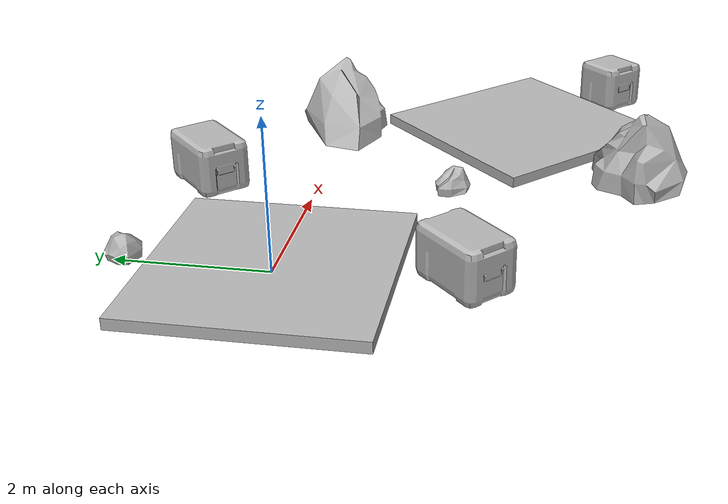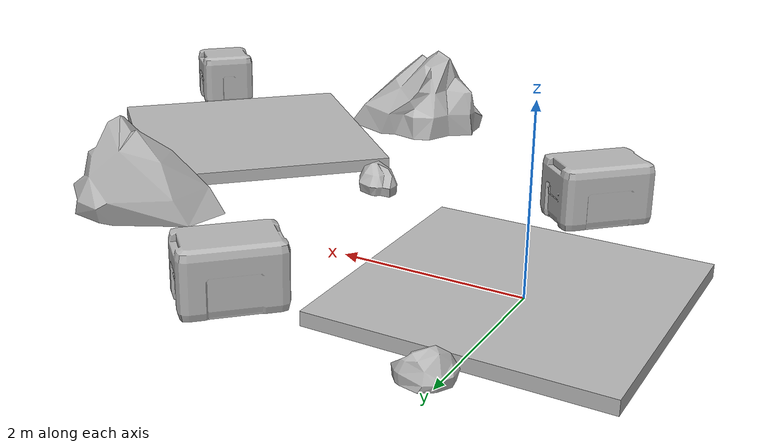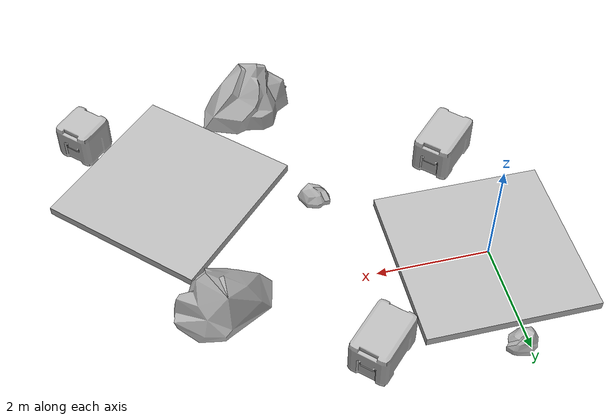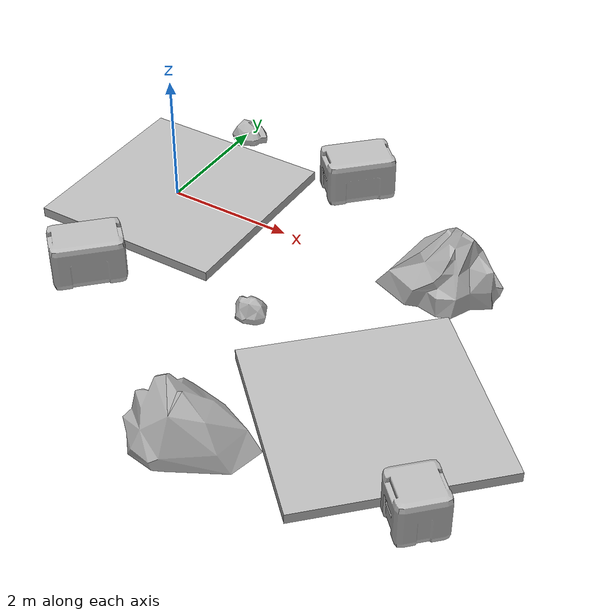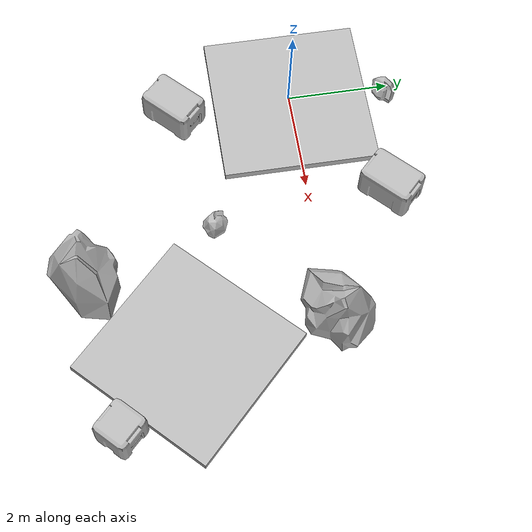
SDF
<sdf version="1.6">
 <world name="SRC_finals">
  <physics type="ode">
   <real_time_update_rate>1000.0</real_time_update_rate>
   <max_step_size>0.001</max_step_size>
   <real_time_factor>1</real_time_factor>
   <ode>
    <solver>
     <type>quick</type>
     <iters>150</iters>
     <precon_iters>0</precon_iters>
     <sor>1.400000</sor>
     <use_dynamic_moi_rescaling>1</use_dynamic_moi_rescaling>
    </solver>
    <constraints>
     <cfm>0.000000</cfm>
     <erp>0.800000</erp>
     <contact_max_correcting_vel>2000.000000</contact_max_correcting_vel>
     <contact_surface_layer>0.01000</contact_surface_layer>
    </constraints>
   </ode>
  </physics>
  <scene>
   <background>0.968627451 0.690196078 0.384313725 1.0</background>
   <grid>0</grid>
   <origin_visual>0</origin_visual>
  </scene>
  <light type="directional" name="sun">
   <pose>0 0 1000 -0.11143662174684987 -0.8707398172430749 0</pose>
   <diffuse>0.8 0.8 0.8 1</diffuse>
   <specular>0.2 0.2 0.2 1</specular>
   <attenuation>
    <range>1000</range>
    <constant>0.9</constant>
    <linear>0.01</linear>
    <quadratic>0.001</quadratic>
   </attenuation>
   <direction>-0.5 0.1 -0.9</direction>
  </light>
  <include>
   <name>walkway_1</name>
   <pose>0.09
      0
      -0.052151
      0
      0
      3.141592653589793</pose>
   <uri>model://walkway_finish_opposite</uri>
  </include>
  <include>
   <name>bling_1</name>
   <pose>0.08999999999999972
      -2.324
      0
      0
      0
      -2.3561944901923453</pose>
   <uri>model://mars_crate_long</uri>
  </include>
  <include>
   <name>bling_2</name>
   <pose>0.09000000000000027
      1.924
      0
      0
      0
      -2.4492935982947064e-16</pose>
   <uri>model://mars_rock_1</uri>
  </include>
  <plugin name="boxT1Start" filename="libBoxContainsPlugin.so">
   <entity>valkyrie</entity>
   <namespace>task1/start</namespace>
   <pose>2.114
        -2.784846821261081e-16
        2.5
        0
        0
        -1.5707963267948968</pose>
   <size>1.524 1 5.0</size>
  </plugin>
  <plugin name="boxT1CP1" filename="libBoxContainsPlugin.so">
   <entity>valkyrie</entity>
   <namespace>task1/checkpoint1</namespace>
   <pose>2.687517287525381
        0.3267572875253808
        2.5
        0
        0
        0.7853981633974481</pose>
   <size>1 1 5.0</size>
  </plugin>
  <include>
   <name>bling_3</name>
   <pose>2.3760000000000003
      1.5619999999999998
      0
      0
      0
      0.785398163397448</pose>
   <uri>model://mars_crate_long</uri>
  </include>
  <include>
   <name>bling_4</name>
   <pose>2.6318912875253813
      -1.8999435390029178
      0
      0
      0
      2.356194490192345</pose>
   <uri>model://mars_rock_1</uri>
  </include>
  <include>
   <name>bling_5</name>
   <pose>4.7701821938335005
      0.23834736730520178
      0
      0
      0
      -0.7853981633974484</pose>
   <uri>model://mars_rock_3</uri>
  </include>
  <include>
   <name>walkway_4</name>
   <pose>5.069995469056597
      -2.6947315610565976
      -0.052151
      0
      0
      0.7853981633974481</pose>
   <uri>model://walkway_finish_adjacent</uri>
  </include>
  <plugin name="boxT1CP4" filename="libBoxContainsPlugin.so">
   <entity>valkyrie</entity>
   <namespace>task1/checkpoint4</namespace>
   <pose>5.069995469056597
        -2.6947315610565976
        2.5
        0
        0
        0.7853981633974481</pose>
   <size>3.048 3.048 5.0</size>
  </plugin>
  <include>
   <name>bling_6</name>
   <pose>6.430468916059514
      -4.055205008059516
      0
      0
      0
      -2.3561944901923453</pose>
   <uri>model://mars_crate</uri>
  </include>
  <include>
   <name>bling_7</name>
   <pose>3.2145472752230955
      -4.550179754890098
      0
      0
      0
      2.356194490192345</pose>
   <uri>model://mars_rock_3</uri>
  </include>
  <plugin name="finals" filename="libFinalsPlugin.so">
   <task1>
    <timeout>1800</timeout>
    <checkpoint1>
     <skip_robot_pose>2.687517287525381
              0.3267572875253808
              1.257
              0
              0
              0.7853981633974481</skip_robot_pose>
    </checkpoint1>
    <checkpoint2>
     <skip_robot_pose>2.687517287525381
              0.3267572875253808
              1.257
              0
              0
              0.7853981633974481</skip_robot_pose>
    </checkpoint2>
    <checkpoint4>
     <skip_robot_pose>5.069995469056597
              -2.6947315610565976
              1.257
              0
              0
              0.7853981633974481</skip_robot_pose>
    </checkpoint4>
   </task1>
  </plugin>
 </world>
</sdf>

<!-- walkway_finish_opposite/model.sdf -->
<sdf version="1.5">
  <model name="walkway_finish_opposite">
    <static>true</static>
    <link name="link">
      <collision name="collision">
        <pose>0 0 0.076075 0 0 0</pose>
        <geometry>
          <box>
            <size>3.048 3.048 0.15215</size>
          </box>
        </geometry>
      </collision>

      <visual name="visual">
        <geometry>
          <mesh>
            <scale>0.001 0.001 0.001</scale>
            <uri>model://walkway_finish_opposite/meshes/walkway_finish_opposite.obj</uri>
          </mesh>
        </geometry>
      </visual>
    </link>
  </model>
</sdf>

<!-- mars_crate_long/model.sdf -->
<sdf version="1.5">
  <model name="mars_crate_long">
    <static>true</static>
    <link name="link">
      <collision name="collision">
        <pose>0 0 0.36 0 0 0</pose>
        <geometry>
          <box>
            <size>1.08 0.72 0.72</size>
          </box>
        </geometry>
      </collision>
      <visual name="visual">
        <geometry>
          <mesh>
            <uri>model://mars_crate_long/meshes/crate_long.obj</uri>
            <scale>0.03 0.03 0.03</scale>
          </mesh>
        </geometry>
      </visual>
    </link>
  </model>
</sdf>

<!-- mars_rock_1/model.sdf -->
<sdf version="1.5">
  <model name="mars_rock_1">
    <static>true</static>
    <link name="link">
      <collision name="collision">
        <geometry>
          <mesh>
            <uri>model://mars_rock_1/meshes/mars_rock_1.obj</uri>
            <scale>0.03 0.03 0.03</scale>
          </mesh>
        </geometry>
      </collision>
      <visual name="visual">
        <geometry>
          <mesh>
            <uri>model://mars_rock_1/meshes/mars_rock_1.obj</uri>
            <scale>0.03 0.03 0.03</scale>
          </mesh>
        </geometry>
      </visual>
    </link>
  </model>
</sdf>

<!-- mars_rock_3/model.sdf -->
<sdf version="1.5">
  <model name="mars_rock_3">
    <static>true</static>
    <link name="link">
      <collision name="collision">
        <geometry>
          <mesh>
            <uri>model://mars_rock_3/meshes/mars_rock_3.obj</uri>
            <scale>0.03 0.03 0.03</scale>
          </mesh>
        </geometry>
      </collision>
      <visual name="visual">
        <geometry>
          <mesh>
            <uri>model://mars_rock_3/meshes/mars_rock_3.obj</uri>
            <scale>0.03 0.03 0.03</scale>
          </mesh>
        </geometry>
      </visual>
    </link>
  </model>
</sdf>

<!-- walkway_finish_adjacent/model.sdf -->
<sdf version="1.5">
  <model name="walkway_finish_adjacent">
    <static>true</static>
    <link name="link">
      <collision name="collision">
        <pose>0 0 0.076075 0 0 0</pose>
        <geometry>
          <box>
            <size>3.048 3.048 0.15215</size>
          </box>
        </geometry>
      </collision>

      <visual name="visual">
        <geometry>
          <mesh>
            <scale>0.001 0.001 0.001</scale>
            <uri>model://walkway_finish_adjacent/meshes/walkway_finish_adjacent.obj</uri>
          </mesh>
        </geometry>
      </visual>
    </link>
  </model>
</sdf>

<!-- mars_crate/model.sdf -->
<sdf version="1.5">
  <model name="mars_crate">
    <static>true</static>
    <link name="link">
      <collision name="collision">
        <pose>0 0 0.36 0 0 0</pose>
        <geometry>
          <box>
            <size>0.72 0.72 0.72</size>
          </box>
        </geometry>
      </collision>
      <visual name="visual">
        <geometry>
          <mesh>
            <uri>model://mars_crate/meshes/crate.obj</uri>
            <scale>0.03 0.03 0.03</scale>
          </mesh>
        </geometry>
      </visual>
    </link>
  </model>
</sdf>
